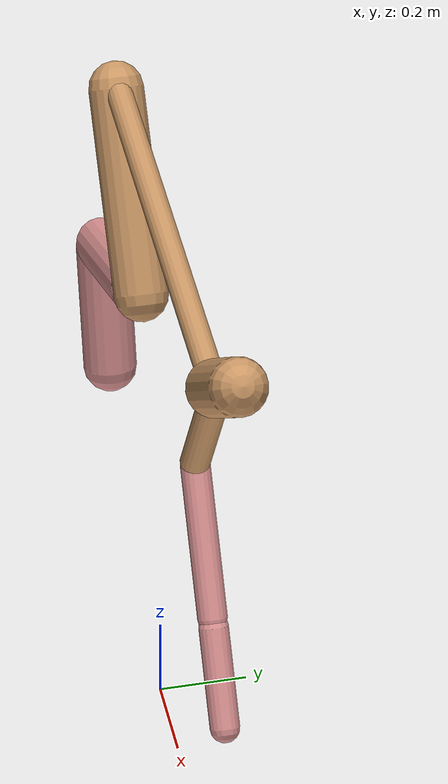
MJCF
<mujoco model="cheetah">
  <compiler angle="radian" coordinate="local" inertiafromgeom="true" settotalmass="14" />
  <default>
    <joint armature=".1" damping=".01" limited="true" solimplimit="0 .8 .03" solreflimit=".02 1" stiffness="8" />
    <geom conaffinity="0" condim="3" contype="1" friction="0.8 .1 .1" rgba="0.8 0.6 .4 1" solimp="0.0 0.8 0.01" solref="0.02 1" />
    <motor ctrllimited="true" ctrlrange="-1 1" />
  </default>
  <size nstack="300000" nuser_geom="1" />
  <option gravity="0 0 -9.81" timestep="0.01" />
  <worldbody>
    <body name="torso" pos="0.0 0.0 1.3754346643541828">
      <joint armature="0" axis="1 0 0" damping="0" limited="false" name="ignorex" pos="0 0 0" stiffness="0" type="slide" />
      <joint armature="0" axis="0 0 1" damping="0" limited="false" name="ignorez" pos="0 0 0" stiffness="0" type="slide" />
      <joint armature="0" axis="0 1 0" damping="0" limited="false" name="ignorey" pos="0 0 0" stiffness="0" type="hinge" />
      <geom fromto="-0.5 0.0 0.0 0.5888873284882578 0.0 0.0" name="torso" size="0.029008793858549622" type="capsule" />
      <geom axisangle="0 1 0 .87" name="head" pos="0.6888873284882576 0.0 0.1" size="0.06208872112895756 0.15" type="capsule" />

      <body name="bthigh" pos="-.5 0 0">
        <joint axis="0 1 0" damping="6" name="bthigh" pos="0 0 0" range="-.52 1.05" stiffness="240" type="hinge" />
        <geom axisangle="0 1 0 -3.8" name="bthigh" pos="0.1506049733479734 0.0 -0.1957864653523654" size="0.06175522698424775 0.22799832739945466" type="capsule" />
        <body name="bshin" pos="0.26120994669594677 0.0 -0.3815729307047308">
          <joint axis="0 1 0" damping="4.5" name="bshin" pos="0 0 0" range="-.785 .785" stiffness="180" type="hinge" />
          <geom axisangle="0 1 0 -2.03" name="bshin" pos="-0.21679582155198512 0.0 -0.10839791077599256" rgba="0.9 0.6 0.6 1" size="0.06175522698424775 0.23586033868909104" type="capsule" />
          <body name="bfoot" pos="-0.43359164310397025 0.0 -0.21679582155198512">
            <joint axis="0 1 0" damping="3" name="bfoot" pos="0 0 0" range="-.4 .785" stiffness="120" type="hinge" />
            <geom axisangle="0 1 0 -.27" name="bfoot" pos="0.045897988435675316 0.0 -0.14840349594201688" rgba="0.9 0.6 0.6 1" size="0.06175522698424775 0.14780581224516373" type="capsule" />
            <inertial mass="10" />
          </body>
        </body>
      </body>
      <body name="fthigh" pos="0.5888873284882576 0.0 0.0">
        <joint axis="0 1 0" damping="4.5" name="fthigh" pos="0 0 0" range="-1.5 0.8" stiffness="180" type="hinge" />
        <geom axisangle="0 1 0 .52" name="fthigh" pos="-0.10811290074193342 0.0 -0.18533640127188586" size="0.032771459922912735 0.20864019126182426" type="capsule" />
        <body name="fshin" pos="-0.21622580148386683 0.0 -0.3706728025437717">
          <joint axis="0 1 0" damping="3" name="fshin" pos="0 0 0" range="-1.2 1.1" stiffness="120" type="hinge" />
          <geom axisangle="0 1 0 -.6" name="fshin" pos="0.10029610114531234 0.0 -0.13887152466274016" rgba="0.9 0.6 0.6 1" size="0.032771459922912735 0.16628466371243136" type="capsule" />
          <body name="ffoot" pos="0.2005922022906247 0.0 -0.27774304932548033">
            <joint axis="0 1 0" damping="1.5" name="ffoot" pos="0 0 0" range="-3.1 -0.3" stiffness="60" type="hinge" />
            <geom axisangle="0 1 0 -.6" name="ffoot" pos="0.06652789875433496 0.0 -0.1034878425067433" rgba="0.9 0.6 0.6 1" size="0.032771459922912735 0.10981062697990751" type="capsule" />
            <inertial mass="10" />
          </body>
        </body>
      </body>
    </body>
  </worldbody>
  <actuator>
    <motor gear="120" joint="bthigh" name="bthigh" />
    <motor gear="90" joint="bshin" name="bshin" />
    <motor gear="60" joint="bfoot" name="bfoot" />
    <motor gear="120" joint="fthigh" name="fthigh" />
    <motor gear="60" joint="fshin" name="fshin" />
    <motor gear="30" joint="ffoot" name="ffoot" />
  </actuator>
</mujoco>
